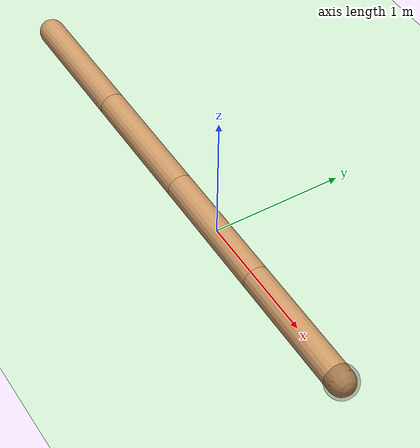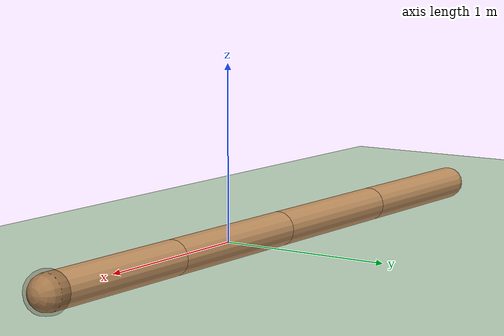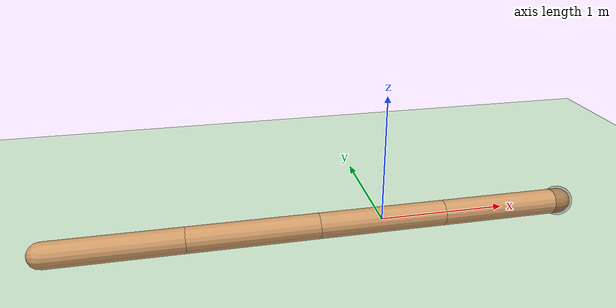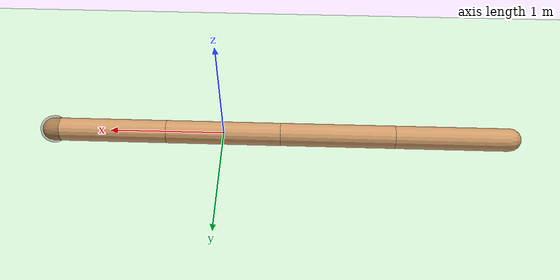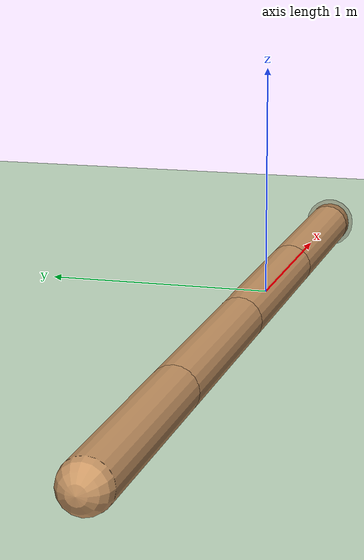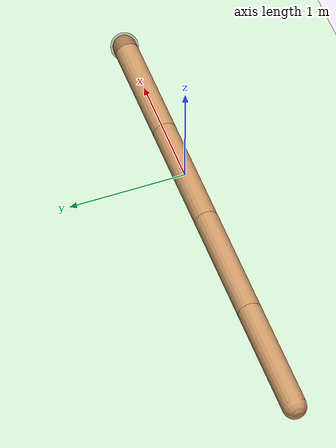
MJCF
<mujoco model="swimmer">
  <compiler angle="degree" coordinate="local" inertiafromgeom="true"/>
  <option collision="predefined" density="4000" integrator="RK4" timestep="0.01" viscosity="0.1"/>
  <default>
    <geom conaffinity="1" condim="1" contype="1" material="geom" rgba="0.8 0.6 .4 1"/>
    <joint armature='0.1'  />
  </default>
  <asset>
    <texture builtin="gradient" height="100" rgb1="1 1 1" rgb2="0 0 0" type="skybox" width="100"/>
    <texture builtin="flat" height="1278" mark="cross" markrgb="1 1 1" name="texgeom" random="0.01" rgb1="0.8 0.6 0.4" rgb2="0.8 0.6 0.4" type="cube" width="127"/>
    <texture builtin="checker" height="100" name="texplane" rgb1="0 0 0" rgb2="0.8 0.8 0.8" type="2d" width="100"/>
    <material name="MatPlane" reflectance="0.5" shininess="1" specular="1" texrepeat="30 30" texture="texplane"/>
    <material name="geom" texture="texgeom" texuniform="true"/>
  </asset>
  <worldbody>
    <geom conaffinity="1" condim="3" material="MatPlane" name="floor" pos="0 0 -0.1" rgba="0.8 0.9 0.8 1" size="40 40 0.1" type="plane"/>
    <!--  ================= SWIMMER ================= /-->
    <body name="torso" pos="0 0 0">
      <geom density="1000" fromto="1.5 0 0 0.5 0 0" size="0.1" type="capsule"/>
      <site name="center" pos="1.5 0 0" size=".12" type="sphere" rgba="0.3 0.2 0.1 0.3"/>
      <joint axis="1 0 0" name="slider1" pos="0 0 0" type="slide"/>
      <joint axis="0 1 0" name="slider2" pos="0 0 0" type="slide"/>
      <joint axis="0 0 1" name="rot" pos="0 0 0" type="hinge"/>
      <body name="mid" pos="0.5 0 0">
        <geom density="1000" fromto="0 0 0 -1 0 0" size="0.1" type="capsule"/>
        <joint axis="0 0 1" limited="true" name="rot2" pos="0 0 0" range="-100 100" type="hinge"/>
        <body name="back" pos="-1 0 0">
          <geom density="1000" fromto="0 0 0 -1 0 0" size="0.1" type="capsule"/>
          <joint axis="0 0 1" limited="true" name="rot3" pos="0 0 0" range="-100 100" type="hinge"/>
	  <body name="back2" pos="-1 0 0">
          <geom density="1000" fromto="0 0 0 -1 0 0" size="0.1" type="capsule"/>
          <joint axis="0 0 1" limited="true" name="rot4" pos="0 0 0" range="-100 100" type="hinge"/>
        </body>
        </body>
      </body>
    </body>
  </worldbody>
  <actuator>
    <motor ctrllimited="true" ctrlrange="-1 1" gear="150.0" joint="rot2"/>
    <motor ctrllimited="true" ctrlrange="-1 1" gear="150.0" joint="rot3"/>
    <motor ctrllimited="true" ctrlrange="-1 1" gear="150.0" joint="rot4"/>
  </actuator>
  <sensor>
    <jointpos name="rot2"  joint="rot2" />
    <jointpos name="rot3"  joint="rot3" />
    <jointpos name="rot4"  joint="rot4" />
  </sensor>
</mujoco>
